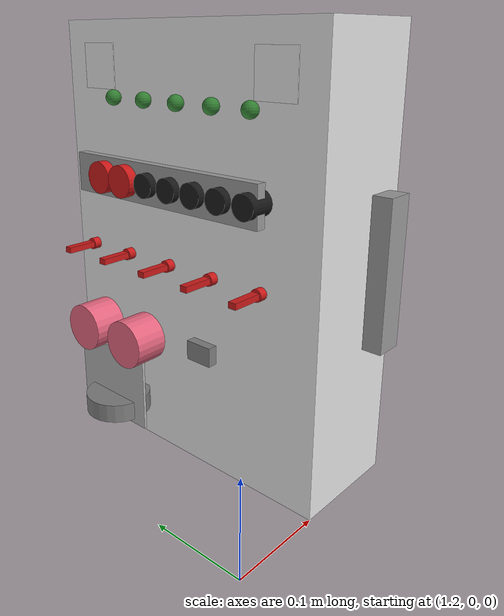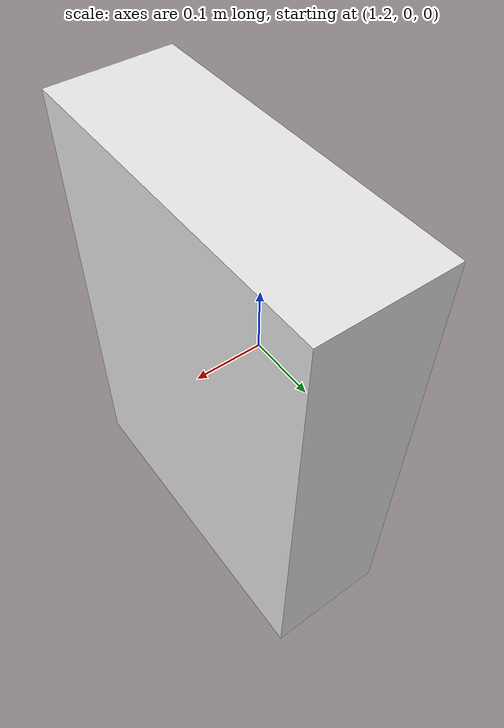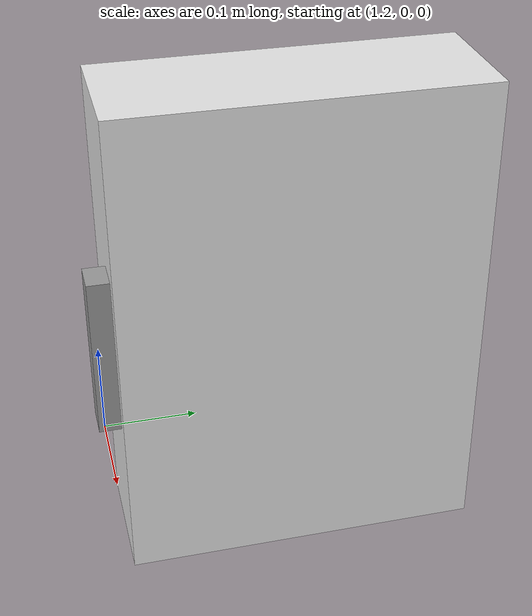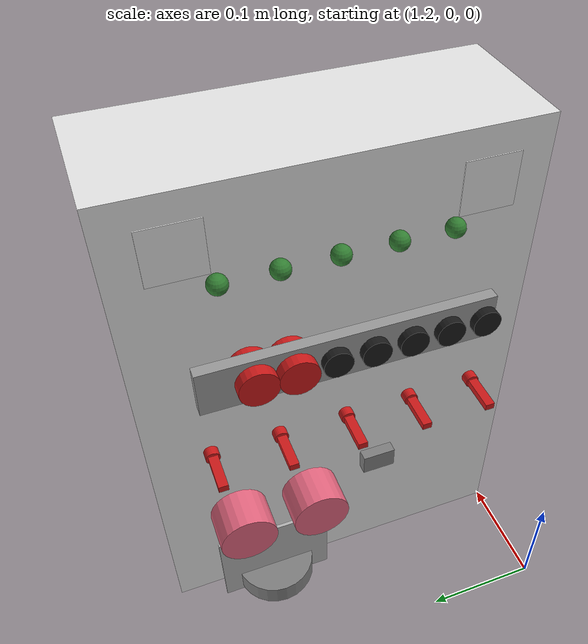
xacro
<?xml version="1.0"?>
<robot xmlns:xacro="http://www.ros.org/wiki/xacro" name="maintenance_panel">
 <xacro:include filename="$(find rover_arm_panel_description)/urdf/panel.ros2_control.xacro"/>

 <xacro:macro name="panel_description">

 <link name="panel_base_frame">
 <inertial>
 <mass value="0.0"/>
 <inertia ixx="0" ixy="0" ixz="0" iyy="1e-6" iyz="0" izz="1e-6"/>
 </inertial>
 </link>

 <joint name="panel_base_frame_to_panel_base" type="fixed">
 <parent link="panel_base_frame"/>
 <child link="panel_base"/>
    <origin xyz="1.3 0 0" rpy="0 0 1.571"/>
 </joint>

 <!-- ENCLOSURE: Sloped trapezoidal white body -->
 <!-- Front face at Y=0, back extends in -Y -->
 <!-- Bottom: ~180mm deep, Top: ~60mm deep -->
 <!-- Mesh: trapezoidal prism, 8 vertices, 6 faces -->

<link name="panel_base">
    <visual>
      <origin xyz="0.165 -0.060 0.225" rpy="0 0 0"/>
      <geometry>
        <box size="0.33 0.12 0.45"/>
      </geometry>
      <material name="white">
        <color rgba="0.9 0.9 0.9 1"/>
      </material>
    </visual>
    <collision>
      <origin xyz="0.165 -0.060 0.225" rpy="0 0 0"/>
      <geometry>
        <box size="0.33 0.12 0.45"/>
      </geometry>
    </collision>
    <!-- Lascia inalterati i blocchi 'front_foot' e 'inertial' seguenti -->

 <collision name="front_foot">
 <origin xyz="0.165 0.05 0.0" rpy="0 0 0"/>
 <geometry>
 <box size="0.40 0.10 0.01"/>
 </geometry>
 </collision>
 <inertial>
 <mass value="10.0"/>
 <inertia ixx="0.738" ixy="0" ixz="0" iyy="1.038" iyz="0" izz="0.426"/>
 </inertial>
 </link>

 <!-- ARUCO TAGS (top corners, above indicators) -->
 <!-- ARUCO TAGS (top corners, above indicators) -->
 <link name="aruco_tag_0">
   <visual>
     <origin xyz="0 0 0" rpy="0 0 0"/>
     <geometry><box size="0.045 0.001 0.045"/></geometry>
     <material name="white"/>
   </visual>
   <inertial>
     <mass value="0.05"/>
     <inertia ixx="1e-6" ixy="0" ixz="0" iyy="1e-6" iyz="0" izz="1e-6"/>
   </inertial>
 </link>

 <!-- CONFIGURAZIONE PBR PER GAZEBO HARMONIC -->
 <gazebo reference="aruco_tag_0">
   <visual>
     <material>
       <diffuse>1 1 1 1</diffuse>
       <pbr>
         <metal>
           <albedo_map>/home/livia/ros2_ws/src/Ros2_Arm/src/rover_arm_panel_description/materials/textures/aruco_0.png</albedo_map>
         </metal>
       </pbr>
     </material>
   </visual>
 </gazebo>

 <joint name="aruco_tag_0_joint" type="fixed">
   <parent link="panel_base"/>
   <child link="aruco_tag_0"/>
   <origin xyz="0.050 0.003 0.405" rpy="0 0 0"/>
 </joint>

 <link name="aruco_tag_1">
   <visual>
     <origin xyz="0 0 0" rpy="0 0 0"/>
     <geometry><box size="0.045 0.001 0.045"/></geometry>
     <material name="white"/>
   </visual>
   <inertial>
     <mass value="0.05"/>
     <inertia ixx="1e-6" ixy="0" ixz="0" iyy="1e-6" iyz="0" izz="1e-6"/>
   </inertial>
 </link>

 <!-- CONFIGURAZIONE PBR PER GAZEBO HARMONIC -->
 <gazebo reference="aruco_tag_1">
   <visual>
     <material>
       <diffuse>1 1 1 1</diffuse>
       <pbr>
         <metal>
           <albedo_map>/home/livia/ros2_ws/src/Ros2_Arm/src/rover_arm_panel_description/materials/textures/aruco_1.png</albedo_map>
         </metal>
       </pbr>
     </material>
   </visual>
 </gazebo>

 <joint name="aruco_tag_1_joint" type="fixed">
   <parent link="panel_base"/>
   <child link="aruco_tag_1"/>
   <origin xyz="0.280 0.001 0.405" rpy="0 0 0"/>
 </joint>

 <!-- INDICATORS (5 green spheres, evenly spaced) -->
 <link name="indicator_1">
 <visual>
 <origin xyz="0 0 0" rpy="0 0 0"/>
 <geometry><sphere radius="0.008"/></geometry>
 <material name="green_off">
 <color rgba="0.2 0.5 0.2 1"/>
 </material>
 </visual>
 <inertial>
 <mass value="0.05"/>
 <inertia ixx="1e-6" ixy="0" ixz="0" iyy="1e-6" iyz="0" izz="1e-6"/>
 </inertial>
 </link>
 <joint name="indicator_1_joint" type="fixed">
 <parent link="panel_base"/>
 <child link="indicator_1"/>
 <origin xyz="0.075 0.005 0.375" rpy="0 0 0"/>
 </joint>

 <link name="indicator_2">
 <visual>
 <origin xyz="0 0 0" rpy="0 0 0"/>
 <geometry><sphere radius="0.008"/></geometry>
 <material name="green_off"/>
 </visual>
 <inertial>
 <mass value="0.05"/>
 <inertia ixx="1e-6" ixy="0" ixz="0" iyy="1e-6" iyz="0" izz="1e-6"/>
 </inertial>
 </link>
 <joint name="indicator_2_joint" type="fixed">
 <parent link="panel_base"/>
 <child link="indicator_2"/>
 <origin xyz="0.120 0.005 0.375" rpy="0 0 0"/>
 </joint>

 <link name="indicator_3">
 <visual>
 <origin xyz="0 0 0" rpy="0 0 0"/>
 <geometry><sphere radius="0.008"/></geometry>
 <material name="green_off"/>
 </visual>
 <inertial>
 <mass value="0.05"/>
 <inertia ixx="1e-6" ixy="0" ixz="0" iyy="1e-6" iyz="0" izz="1e-6"/>
 </inertial>
 </link>
 <joint name="indicator_3_joint" type="fixed">
 <parent link="panel_base"/>
 <child link="indicator_3"/>
 <origin xyz="0.165 0.005 0.375" rpy="0 0 0"/>
 </joint>

 <link name="indicator_4">
 <visual>
 <origin xyz="0 0 0" rpy="0 0 0"/>
 <geometry><sphere radius="0.008"/></geometry>
 <material name="green_off"/>
 </visual>
 <inertial>
 <mass value="0.05"/>
 <inertia ixx="1e-6" ixy="0" ixz="0" iyy="1e-6" iyz="0" izz="1e-6"/>
 </inertial>
 </link>
 <joint name="indicator_4_joint" type="fixed">
 <parent link="panel_base"/>
 <child link="indicator_4"/>
 <origin xyz="0.210 0.005 0.375" rpy="0 0 0"/>
 </joint>

 <link name="indicator_5">
 <visual>
 <origin xyz="0 0 0" rpy="0 0 0"/>
 <geometry><sphere radius="0.008"/></geometry>
 <material name="green_off"/>
 </visual>
 <inertial>
 <mass value="0.05"/>
 <inertia ixx="1e-6" ixy="0" ixz="0" iyy="1e-6" iyz="0" izz="1e-6"/>
 </inertial>
 </link>
 <joint name="indicator_5_joint" type="fixed">
 <parent link="panel_base"/>
 <child link="indicator_5"/>
 <origin xyz="0.255 0.005 0.375" rpy="0 0 0"/>
 </joint>

 <!-- TOGGLE SWITCHES (5 red lever type) -->
 <!-- Axis 1 0 0 = pitch rotation (up/down toggle) -->
 <!-- Main switch -->
 <link name="main_switch_knob">
 <visual>
 <origin xyz="0 0.0175 0" rpy="0 0 0"/>
 <geometry><box size="0.008 0.035 0.006"/></geometry>
 <material name="red">
 <color rgba="0.8 0.1 0.1 1"/>
 </material>
 </visual>
 <visual>
 <origin xyz="0 0 0" rpy="1.5708 0 0"/>
 <geometry><cylinder radius="0.006" length="0.008"/></geometry>
 <material name="red"/>
 </visual>
 <collision>
 <origin xyz="0 0.0175 0" rpy="0 0 0"/>
 <geometry><box size="0.008 0.035 0.006"/></geometry>
 </collision>
 <inertial>
 <mass value="0.02"/>
 <inertia ixx="2.8e-6" ixy="0" ixz="0" iyy="2.8e-6" iyz="0" izz="2.6e-6"/>
 </inertial>
 </link>
 <joint name="main_switch" type="revolute">
 <parent link="panel_base"/>
 <child link="main_switch_knob"/>
 <origin xyz="0.050 0.020 0.220" rpy="0 0 0"/>
 <axis xyz="1 0 0"/>
 <limit lower="-1.57" upper="1.57" effort="5.0" velocity="2.0"/>
 </joint>

 <!-- Lever switch 1 -->
 <link name="lever_switch_1_knob">
 <visual>
 <origin xyz="0 0.0175 0" rpy="0 0 0"/>
 <geometry><box size="0.008 0.035 0.006"/></geometry>
 <material name="red"/>
 </visual>
 <visual>
 <origin xyz="0 0 0" rpy="1.5708 0 0"/>
 <geometry><cylinder radius="0.006" length="0.008"/></geometry>
 <material name="red"/>
 </visual>
 <collision>
 <origin xyz="0 0.0175 0" rpy="0 0 0"/>
 <geometry><box size="0.008 0.035 0.006"/></geometry>
 </collision>
 <inertial>
 <mass value="0.02"/>
 <inertia ixx="2.8e-6" ixy="0" ixz="0" iyy="2.8e-6" iyz="0" izz="2.6e-6"/>
 </inertial>
 </link>
 <joint name="lever_switch_1" type="revolute">
 <parent link="panel_base"/>
 <child link="lever_switch_1_knob"/>
 <origin xyz="0.108 0.020 0.220" rpy="0 0 0"/>
 <axis xyz="1 0 0"/>
 <limit lower="-1.57" upper="1.57" effort="5.0" velocity="2.0"/>
 </joint>

 <!-- Lever switch 2 -->
 <link name="lever_switch_2_knob">
 <visual>
 <origin xyz="0 0.0175 0" rpy="0 0 0"/>
 <geometry><box size="0.008 0.035 0.006"/></geometry>
 <material name="red"/>
 </visual>
 <visual>
 <origin xyz="0 0 0" rpy="1.5708 0 0"/>
 <geometry><cylinder radius="0.006" length="0.008"/></geometry>
 <material name="red"/>
 </visual>
 <collision>
 <origin xyz="0 0.0175 0" rpy="0 0 0"/>
 <geometry><box size="0.008 0.035 0.006"/></geometry>
 </collision>
 <inertial>
 <mass value="0.02"/>
 <inertia ixx="2.8e-6" ixy="0" ixz="0" iyy="2.8e-6" iyz="0" izz="2.6e-6"/>
 </inertial>
 </link>
 <joint name="lever_switch_2" type="revolute">
 <parent link="panel_base"/>
 <child link="lever_switch_2_knob"/>
 <origin xyz="0.165 0.020 0.220" rpy="0 0 0"/>
 <axis xyz="1 0 0"/>
 <limit lower="-1.57" upper="1.57" effort="5.0" velocity="2.0"/>
 </joint>

 <!-- Lever switch 3 -->
 <link name="lever_switch_3_knob">
 <visual>
 <origin xyz="0 0.0175 0" rpy="0 0 0"/>
 <geometry><box size="0.008 0.035 0.006"/></geometry>
 <material name="red"/>
 </visual>
 <visual>
 <origin xyz="0 0 0" rpy="1.5708 0 0"/>
 <geometry><cylinder radius="0.006" length="0.008"/></geometry>
 <material name="red"/>
 </visual>
 <collision>
 <origin xyz="0 0.0175 0" rpy="0 0 0"/>
 <geometry><box size="0.008 0.035 0.006"/></geometry>
 </collision>
 <inertial>
 <mass value="0.02"/>
 <inertia ixx="2.8e-6" ixy="0" ixz="0" iyy="2.8e-6" iyz="0" izz="2.6e-6"/>
 </inertial>
 </link>
 <joint name="lever_switch_3" type="revolute">
 <parent link="panel_base"/>
 <child link="lever_switch_3_knob"/>
 <origin xyz="0.223 0.020 0.220" rpy="0 0 0"/>
 <axis xyz="1 0 0"/>
 <limit lower="-1.57" upper="1.57" effort="5.0" velocity="2.0"/>
 </joint>

 <!-- Lever switch 4 -->
 <link name="lever_switch_4_knob">
 <visual>
 <origin xyz="0 0.0175 0" rpy="0 0 0"/>
 <geometry><box size="0.008 0.035 0.006"/></geometry>
 <material name="red"/>
 </visual>
 <visual>
 <origin xyz="0 0 0" rpy="1.5708 0 0"/>
 <geometry><cylinder radius="0.006" length="0.008"/></geometry>
 <material name="red"/>
 </visual>
 <collision>
 <origin xyz="0 0.0175 0" rpy="0 0 0"/>
 <geometry><box size="0.008 0.035 0.006"/></geometry>
 </collision>
 <inertial>
 <mass value="0.02"/>
 <inertia ixx="2.8e-6" ixy="0" ixz="0" iyy="2.8e-6" iyz="0" izz="2.6e-6"/>
 </inertial>
 </link>
 <joint name="lever_switch_4" type="revolute">
 <parent link="panel_base"/>
 <child link="lever_switch_4_knob"/>
 <origin xyz="0.280 0.020 0.220" rpy="0 0 0"/>
 <axis xyz="1 0 0"/>
 <limit lower="-1.57" upper="1.57" effort="5.0" velocity="2.0"/>
 </joint>

 <!-- DIN RAIL + ROTARY SWITCHES + POWER SWITCHES -->
 <!-- DIN rail visual -->
 <link name="din_rail">
 <visual>
 <origin xyz="0 0 0" rpy="0 0 0"/>
 <geometry><box size="0.240 0.010 0.040"/></geometry>
 <material name="metal">
 <color rgba="0.6 0.6 0.6 1"/>
 </material>
 </visual>
 <inertial>
 <mass value="0.05"/>
 <inertia ixx="1e-6" ixy="0" ixz="0" iyy="1e-6" iyz="0" izz="1e-6"/>
 </inertial>
 </link>
 <joint name="din_rail_joint" type="fixed">
 <parent link="panel_base"/>
 <child link="din_rail"/>
 <origin xyz="0.165 0.025 0.300" rpy="0 0 0"/>
 </joint>

 <!-- Rotary switch 1 -->
 <link name="rotary_switch_1_knob">
 <visual>
 <origin xyz="0 0 0" rpy="0 0 0"/>
 <geometry><cylinder radius="0.012" length="0.025"/></geometry>
 <material name="black">
 <color rgba="0.1 0.1 0.1 1"/>
 </material>
 </visual>
 <collision>
 <origin xyz="0 0 0" rpy="0 0 0"/>
 <geometry><cylinder radius="0.012" length="0.025"/></geometry>
 </collision>
 <inertial>
 <mass value="0.015"/>
 <inertia ixx="1.3e-6" ixy="0" ixz="0" iyy="1.3e-6" iyz="0" izz="1.1e-6"/>
 </inertial>
 </link>
 <joint name="rotary_switch_1" type="continuous">
 <parent link="panel_base"/>
 <child link="rotary_switch_1_knob"/>
 <origin xyz="0.055 0.025 0.300" rpy="1.5708 0 0"/>
 <axis xyz="0 0 1"/>
 <limit effort="3.0" velocity="3.0"/>
 </joint>

 <!-- Rotary switch 2 -->
 <link name="rotary_switch_2_knob">
 <visual>
 <origin xyz="0 0 0" rpy="0 0 0"/>
 <geometry><cylinder radius="0.012" length="0.025"/></geometry>
 <material name="black"/>
 </visual>
 <collision>
 <origin xyz="0 0 0" rpy="0 0 0"/>
 <geometry><cylinder radius="0.012" length="0.025"/></geometry>
 </collision>
 <inertial>
 <mass value="0.015"/>
 <inertia ixx="1.3e-6" ixy="0" ixz="0" iyy="1.3e-6" iyz="0" izz="1.1e-6"/>
 </inertial>
 </link>
 <joint name="rotary_switch_2" type="continuous">
 <parent link="panel_base"/>
 <child link="rotary_switch_2_knob"/>
 <origin xyz="0.086 0.025 0.300" rpy="1.5708 0 0"/>
 <axis xyz="0 0 1"/>
 <limit effort="3.0" velocity="3.0"/>
 </joint>

 <!-- Rotary switch 3 -->
 <link name="rotary_switch_3_knob">
 <visual>
 <origin xyz="0 0 0" rpy="0 0 0"/>
 <geometry><cylinder radius="0.012" length="0.025"/></geometry>
 <material name="black"/>
 </visual>
 <collision>
 <origin xyz="0 0 0" rpy="0 0 0"/>
 <geometry><cylinder radius="0.012" length="0.025"/></geometry>
 </collision>
 <inertial>
 <mass value="0.015"/>
 <inertia ixx="1.3e-6" ixy="0" ixz="0" iyy="1.3e-6" iyz="0" izz="1.1e-6"/>
 </inertial>
 </link>
 <joint name="rotary_switch_3" type="continuous">
 <parent link="panel_base"/>
 <child link="rotary_switch_3_knob"/>
 <origin xyz="0.117 0.025 0.300" rpy="1.5708 0 0"/>
 <axis xyz="0 0 1"/>
 <limit effort="3.0" velocity="3.0"/>
 </joint>

 <!-- Rotary switch 4 -->
 <link name="rotary_switch_4_knob">
 <visual>
 <origin xyz="0 0 0" rpy="0 0 0"/>
 <geometry><cylinder radius="0.012" length="0.025"/></geometry>
 <material name="black"/>
 </visual>
 <collision>
 <origin xyz="0 0 0" rpy="0 0 0"/>
 <geometry><cylinder radius="0.012" length="0.025"/></geometry>
 </collision>
 <inertial>
 <mass value="0.015"/>
 <inertia ixx="1.3e-6" ixy="0" ixz="0" iyy="1.3e-6" iyz="0" izz="1.1e-6"/>
 </inertial>
 </link>
 <joint name="rotary_switch_4" type="continuous">
 <parent link="panel_base"/>
 <child link="rotary_switch_4_knob"/>
 <origin xyz="0.148 0.025 0.300" rpy="1.5708 0 0"/>
 <axis xyz="0 0 1"/>
 <limit effort="3.0" velocity="3.0"/>
 </joint>

 <!-- Rotary switch 5 -->
 <link name="rotary_switch_5_knob">
 <visual>
 <origin xyz="0 0 0" rpy="0 0 0"/>
 <geometry><cylinder radius="0.012" length="0.025"/></geometry>
 <material name="black"/>
 </visual>
 <collision>
 <origin xyz="0 0 0" rpy="0 0 0"/>
 <geometry><cylinder radius="0.012" length="0.025"/></geometry>
 </collision>
 <inertial>
 <mass value="0.015"/>
 <inertia ixx="1.3e-6" ixy="0" ixz="0" iyy="1.3e-6" iyz="0" izz="1.1e-6"/>
 </inertial>
 </link>
 <joint name="rotary_switch_5" type="continuous">
 <parent link="panel_base"/>
 <child link="rotary_switch_5_knob"/>
 <origin xyz="0.179 0.025 0.300" rpy="1.5708 0 0"/>
 <axis xyz="0 0 1"/>
 <limit effort="3.0" velocity="3.0"/>
 </joint>

 <!-- Power switch 1 -->
 <link name="power_switch_1_knob">
 <visual>
 <origin xyz="0 0 0" rpy="0 0 0"/>
 <geometry><cylinder radius="0.016" length="0.030"/></geometry>
 <material name="red"/>
 </visual>
 <collision>
 <origin xyz="0 0 0" rpy="0 0 0"/>
 <geometry><cylinder radius="0.016" length="0.030"/></geometry>
 </collision>
 <inertial>
 <mass value="0.02"/>
 <inertia ixx="2.8e-6" ixy="0" ixz="0" iyy="2.8e-6" iyz="0" izz="2.6e-6"/>
 </inertial>
 </link>
 <joint name="power_switch_1" type="continuous">
 <parent link="panel_base"/>
 <child link="power_switch_1_knob"/>
 <origin xyz="0.210 0.025 0.300" rpy="1.5708 0 0"/>
 <axis xyz="0 0 1"/>
 <limit effort="3.0" velocity="3.0"/>
 </joint>

 <!-- Power switch 2 -->
 <link name="power_switch_2_knob">
 <visual>
 <origin xyz="0 0 0" rpy="0 0 0"/>
 <geometry><cylinder radius="0.016" length="0.030"/></geometry>
 <material name="red"/>
 </visual>
 <collision>
 <origin xyz="0 0 0" rpy="0 0 0"/>
 <geometry><cylinder radius="0.016" length="0.030"/></geometry>
 </collision>
 <inertial>
 <mass value="0.02"/>
 <inertia ixx="2.8e-6" ixy="0" ixz="0" iyy="2.8e-6" iyz="0" izz="2.6e-6"/>
 </inertial>
 </link>
 <joint name="power_switch_2" type="continuous">
 <parent link="panel_base"/>
 <child link="power_switch_2_knob"/>
 <origin xyz="0.241 0.025 0.300" rpy="1.5708 0 0"/>
 <axis xyz="0 0 1"/>
 <limit effort="3.0" velocity="3.0"/>
 </joint>

 <!-- SOCKETS (lower section) -->
 <!-- Grey socket -->
 <link name="socket_grey">
 <visual>
 <origin xyz="0 0 0" rpy="0 0 0"/>
 <geometry><box size="0.030 0.010 0.020"/></geometry>
 <material name="grey_metal">
 <color rgba="0.5 0.5 0.5 1"/>
 </material>
 </visual>
 <collision>
 <origin xyz="0 0 0" rpy="0 0 0"/>
 <geometry><box size="0.030 0.010 0.020"/></geometry>
 </collision>
 <inertial>
 <mass value="0.05"/>
 <inertia ixx="1e-6" ixy="0" ixz="0" iyy="1e-6" iyz="0" izz="1e-6"/>
 </inertial>
 </link>
 <joint name="socket_grey_joint" type="fixed">
 <parent link="panel_base"/>
 <child link="socket_grey"/>
 <origin xyz="0.130 0.010 0.135" rpy="0 0 0"/>
 </joint>

 <!-- Pink connector 1 -->
 <link name="socket_pink_1">
 <visual>
 <origin xyz="0 0 0" rpy="1.5708 0 0"/>
 <geometry><cylinder radius="0.025" length="0.035"/></geometry>
 <material name="pink">
 <color rgba="0.9 0.4 0.5 1"/>
 </material>
 </visual>
 <collision>
 <origin xyz="0 0 0" rpy="1.5708 0 0"/>
 <geometry><cylinder radius="0.025" length="0.035"/></geometry>
 </collision>
 <inertial>
 <mass value="0.05"/>
 <inertia ixx="1e-6" ixy="0" ixz="0" iyy="1e-6" iyz="0" izz="1e-6"/>
 </inertial>
 </link>
 <joint name="socket_pink_1_joint" type="fixed">
 <parent link="panel_base"/>
 <child link="socket_pink_1"/>
 <origin xyz="0.200 0.035 0.135" rpy="0 0 0"/>
 </joint>

 <!-- Pink connector 2 -->
 <link name="socket_pink_2">
 <visual>
 <origin xyz="0 0 0" rpy="1.5708 0 0"/>
 <geometry><cylinder radius="0.025" length="0.035"/></geometry>
 <material name="pink"/>
 </visual>
 <collision>
 <origin xyz="0 0 0" rpy="1.5708 0 0"/>
 <geometry><cylinder radius="0.025" length="0.035"/></geometry>
 </collision>
 <inertial>
 <mass value="0.05"/>
 <inertia ixx="1e-6" ixy="0" ixz="0" iyy="1e-6" iyz="0" izz="1e-6"/>
 </inertial>
 </link>
 <joint name="socket_pink_2_joint" type="fixed">
 <parent link="panel_base"/>
 <child link="socket_pink_2"/>
 <origin xyz="0.265 0.035 0.135" rpy="0 0 0"/>
 </joint>

 <!-- ELECTROMAGNET + METAL PLATE -->
 <link name="electromagnet">
 <visual>
 <origin xyz="0 0 0" rpy="0 0 0"/>
 <geometry><cylinder radius="0.035" length="0.020"/></geometry>
 <material name="grey_metal"/>
 </visual>
 <collision>
 <origin xyz="0 0 0" rpy="0 0 0"/>
 <geometry><cylinder radius="0.035" length="0.020"/></geometry>
 </collision>
 <inertial>
 <mass value="0.05"/>
 <inertia ixx="1e-6" ixy="0" ixz="0" iyy="1e-6" iyz="0" izz="1e-6"/>
 </inertial>
 </link>
 <joint name="electromagnet_joint" type="fixed">
 <parent link="panel_base"/>
 <child link="electromagnet"/>
 <origin xyz="0.240 0.030 0.050" rpy="0 0 0"/>
 </joint>

 <link name="metal_plate">
 <visual>
 <origin xyz="0 0 0" rpy="0 0 0"/>
 <geometry><box size="0.100 0.003 0.080"/></geometry>
 <material name="metal">
 <color rgba="0.7 0.7 0.7 1"/>
 </material>
 </visual>
 <collision>
 <origin xyz="0 0 0" rpy="0 0 0"/>
 <geometry><box size="0.100 0.003 0.080"/></geometry>
 </collision>
 <inertial>
 <mass value="0.3"/>
 <inertia ixx="1.6e-4" ixy="0" ixz="0" iyy="4.1e-4" iyz="0" izz="2.5e-4"/>
 </inertial>
 </link>
 <joint name="metal_plate_joint" type="fixed">
 <parent link="panel_base"/>
 <child link="metal_plate"/>
 <origin xyz="0.240 0.035 0.075" rpy="0 0 0"/>
 </joint>

 <!-- BOTTOM LEFT BLACK CUTOUT -->
 <link name="black_cutout">
 <visual>
 <origin xyz="0 0 0" rpy="0 0 0"/>
 <geometry><box size="0.045 0.002 0.045"/></geometry>
 <material name="dark_gray">
 <color rgba="0.2 0.2 0.2 1"/>
 </material>
 </visual>
 <inertial>
 <mass value="0.05"/>
 <inertia ixx="1e-6" ixy="0" ixz="0" iyy="1e-6" iyz="0" izz="1e-6"/>
 </inertial>
 </link>
 <joint name="black_cutout_joint" type="fixed">
 <parent link="panel_base"/>
 <child link="black_cutout"/>
 <origin xyz="0.060 -0.002 0.050" rpy="0 0 0"/>
 </joint>

 <!-- SIDE HANDLE (left wall) -->
 <link name="side_handle">
 <visual>
 <origin xyz="0 0 0" rpy="0 0 0"/>
 <geometry><box size="0.020 0.030 0.150"/></geometry>
 <material name="metal"/>
 </visual>
 <collision>
 <origin xyz="0 0 0" rpy="0 0 0"/>
 <geometry><box size="0.020 0.030 0.150"/></geometry>
 </collision>
 <inertial>
 <mass value="0.05"/>
 <inertia ixx="1e-6" ixy="0" ixz="0" iyy="1e-6" iyz="0" izz="1e-6"/>
 </inertial>
 </link>
 <joint name="side_handle_joint" type="fixed">
 <parent link="panel_base"/>
 <child link="side_handle"/>
 <origin xyz="-0.010 -0.090 0.225" rpy="0 0 0"/>
 </joint>

 </xacro:macro>

 <xacro:panel_description/>
 <xacro:panel_ros2_control name="maintenance_panel" use_gazebo="$(optenv use_gazebo false)"/>

  <!-- Gazebo-only tags -->
  <xacro:if value="$(optenv use_gazebo false)">
  <gazebo>
<plugin filename="libgz_ros2_control-system.so" name="gz_ros2_control::GazeboSimROS2ControlPlugin">
    <robot_param_node>panel_robot_state_publisher</robot_param_node>
    <parameters>$(optenv panel_ctrl_yaml /tmp/panel_controller.yaml)</parameters>
    <ros>
      <namespace>panel</namespace>
      <remapping>joint_states:=/panel/joint_states</remapping>
    </ros>
  </plugin>
  </gazebo>

  <!-- Lever switch plugins -->
  <gazebo>
  <plugin name="" filename="liblever_switch_plugin">
    <joint>main_switch</joint>
    <off_position>-1.57</off_position>
    <on_position>1.57</on_position>
    <detent_stiffness>0.4</detent_stiffness>
  </plugin>
  </gazebo>

  <gazebo>
  <plugin name="" filename="liblever_switch_plugin">
    <joint>lever_switch_1</joint>
    <off_position>-1.57</off_position>
    <on_position>1.57</on_position>
    <detent_stiffness>0.4</detent_stiffness>
  </plugin>
  </gazebo>

  <gazebo>
  <plugin name="" filename="liblever_switch_plugin">
    <joint>lever_switch_2</joint>
    <off_position>-1.57</off_position>
    <on_position>1.57</on_position>
    <detent_stiffness>0.4</detent_stiffness>
  </plugin>
  </gazebo>

  <gazebo>
  <plugin name="" filename="liblever_switch_plugin">
    <joint>lever_switch_3</joint>
    <off_position>-1.57</off_position>
    <on_position>1.57</on_position>
    <detent_stiffness>0.4</detent_stiffness>
  </plugin>
  </gazebo>

  <gazebo>
  <plugin name="" filename="liblever_switch_plugin">
    <joint>lever_switch_4</joint>
    <off_position>-1.57</off_position>
    <on_position>1.57</on_position>
    <detent_stiffness>0.4</detent_stiffness>
  </plugin>
  </gazebo>

  <!-- Rotary switch plugins -->
  <gazebo>
  <plugin name="" filename="librotary_switch_plugin">
    <joint>rotary_switch_1</joint>
    <friction_torque>0.05</friction_torque>
  </plugin>
  </gazebo>

  <gazebo>
  <plugin name="" filename="librotary_switch_plugin">
    <joint>rotary_switch_2</joint>
    <friction_torque>0.05</friction_torque>
  </plugin>
  </gazebo>

  <gazebo>
  <plugin name="" filename="librotary_switch_plugin">
    <joint>rotary_switch_3</joint>
    <friction_torque>0.05</friction_torque>
  </plugin>
  </gazebo>

  <gazebo>
  <plugin name="" filename="librotary_switch_plugin">
    <joint>rotary_switch_4</joint>
    <friction_torque>0.05</friction_torque>
  </plugin>
  </gazebo>

  <gazebo>
  <plugin name="" filename="librotary_switch_plugin">
    <joint>rotary_switch_5</joint>
    <friction_torque>0.05</friction_torque>
  </plugin>
  </gazebo>

  <gazebo>
  <plugin name="" filename="librotary_switch_plugin">
    <joint>power_switch_1</joint>
    <friction_torque>0.08</friction_torque>
  </plugin>
  </gazebo>

  <gazebo>
  <plugin name="" filename="librotary_switch_plugin">
    <joint>power_switch_2</joint>
    <friction_torque>0.08</friction_torque>
  </plugin>
  </gazebo>

 <!-- Panel base friction -->
 <gazebo reference="panel_base">
 <mu1>0.8</mu1>
 <mu2>0.8</mu2>
 </gazebo>
 </xacro:if>
</robot>
